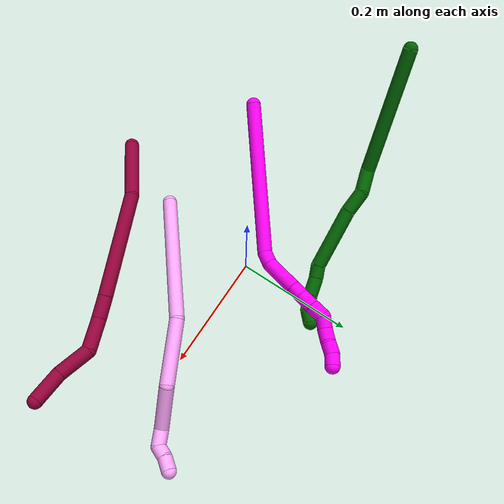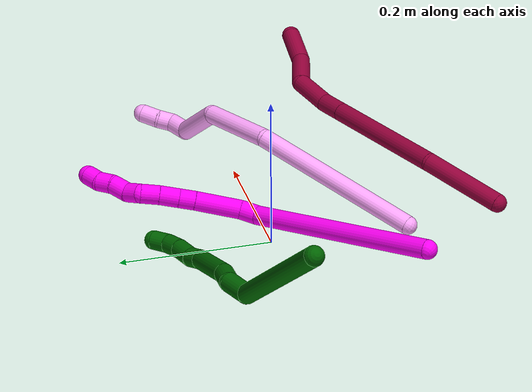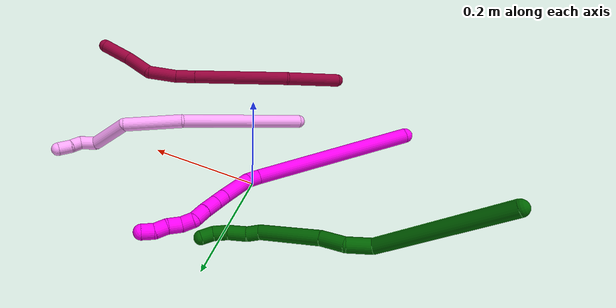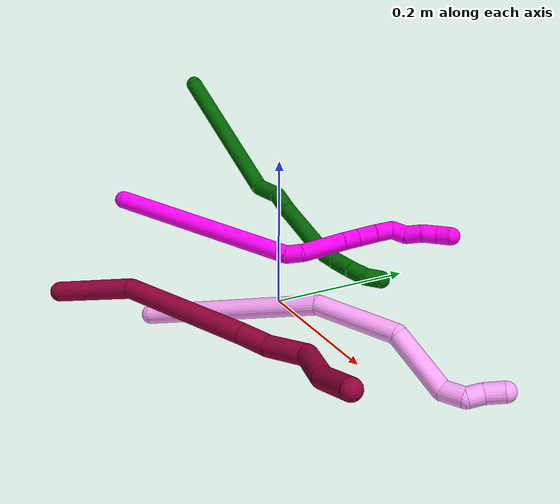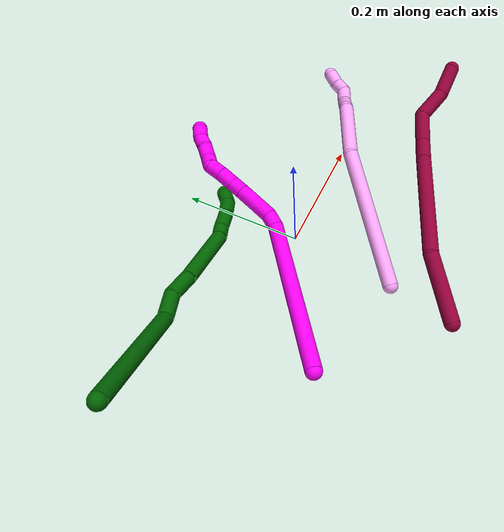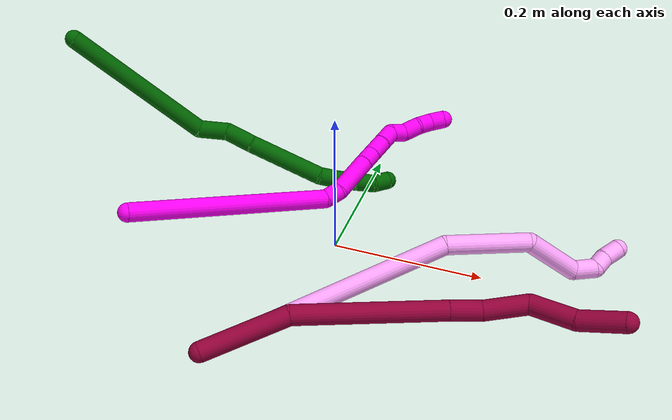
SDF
<sdf version="1.7">
 <world name="default">
  <model name="4">
   <static>0</static>
   <link name="4">
    <collision name="collision-cylinder-e_1_1_4">
     <pose>0.099212 0.010861 -0.063949 -2.97336 0.991753 -2.83236</pose>
     <geometry><cylinder><radius>0.0125</radius><length>0.237069</length></cylinder></geometry>
     <surface>
      <friction><ode><mu>1.16</mu><mu2>1.16</mu2><slip1>0</slip1><slip2>0</slip2></ode></friction>
      <contact><ode><kp>1e+06</kp><kd>1</kd><max_vel>0</max_vel><min_depth>0.001</min_depth></ode></contact>
     </surface>
    </collision>
    <visual name="visual-cylinder-e_1_1_4">
     <pose>0.099212 0.010861 -0.063949 -2.97336 0.991753 -2.83236</pose>
     <geometry><cylinder><radius>0.0125</radius><length>0.237069</length></cylinder></geometry>
     <material><ambient>1 0.65098 0.996078 1</ambient></material>
    </visual>
    <collision name="collision-cylinder-e_2_4_5">
     <pose>0.251607 0.02347 -0.138797 -2.98252 1.36615 -2.94632</pose>
     <geometry><cylinder><radius>0.0125</radius><length>0.108634</length></cylinder></geometry>
     <surface>
      <friction><ode><mu>1.16</mu><mu2>1.16</mu2><slip1>0</slip1><slip2>0</slip2></ode></friction>
      <contact><ode><kp>1e+06</kp><kd>1</kd><max_vel>0</max_vel><min_depth>0.001</min_depth></ode></contact>
     </surface>
    </collision>
    <visual name="visual-cylinder-e_2_4_5">
     <pose>0.251607 0.02347 -0.138797 -2.98252 1.36615 -2.94632</pose>
     <geometry><cylinder><radius>0.0125</radius><length>0.108634</length></cylinder></geometry>
     <material><ambient>1 0.65098 0.996078 1</ambient></material>
    </visual>
    <collision name="collision-cylinder-e_3_5_6">
     <pose>0.340381 0.010427 -0.13923 0.95499 1.09987 0.614307</pose>
     <geometry><cylinder><radius>0.0125</radius><length>0.079876</length></cylinder></geometry>
     <surface>
      <friction><ode><mu>1.16</mu><mu2>1.16</mu2><slip1>0</slip1><slip2>0</slip2></ode></friction>
      <contact><ode><kp>1e+06</kp><kd>1</kd><max_vel>0</max_vel><min_depth>0.001</min_depth></ode></contact>
     </surface>
    </collision>
    <visual name="visual-cylinder-e_3_5_6">
     <pose>0.340381 0.010427 -0.13923 0.95499 1.09987 0.614307</pose>
     <geometry><cylinder><radius>0.0125</radius><length>0.079876</length></cylinder></geometry>
     <material><ambient>1 0.65098 0.996078 1</ambient></material>
    </visual>
    <collision name="collision-cylinder-e_4_6_7">
     <pose>0.390406 -0.002761 -0.132452 -2.73156 1.29901 -2.60707</pose>
     <geometry><cylinder><radius>0.0125</radius><length>0.029971</length></cylinder></geometry>
     <surface>
      <friction><ode><mu>1.16</mu><mu2>1.16</mu2><slip1>0</slip1><slip2>0</slip2></ode></friction>
      <contact><ode><kp>1e+06</kp><kd>1</kd><max_vel>0</max_vel><min_depth>0.001</min_depth></ode></contact>
     </surface>
    </collision>
    <visual name="visual-cylinder-e_4_6_7">
     <pose>0.390406 -0.002761 -0.132452 -2.73156 1.29901 -2.60707</pose>
     <geometry><cylinder><radius>0.0125</radius><length>0.029971</length></cylinder></geometry>
     <material><ambient>1 0.65098 0.996078 1</ambient></material>
    </visual>
    <collision name="collision-cylinder-e_5_7_8">
     <pose>0.410682 -0.003565 -0.144024 2.84518 0.616446 2.26458</pose>
     <geometry><cylinder><radius>0.0125</radius><length>0.020203</length></cylinder></geometry>
     <surface>
      <friction><ode><mu>1.16</mu><mu2>1.16</mu2><slip1>0</slip1><slip2>0</slip2></ode></friction>
      <contact><ode><kp>1e+06</kp><kd>1</kd><max_vel>0</max_vel><min_depth>0.001</min_depth></ode></contact>
     </surface>
    </collision>
    <visual name="visual-cylinder-e_5_7_8">
     <pose>0.410682 -0.003565 -0.144024 2.84518 0.616446 2.26458</pose>
     <geometry><cylinder><radius>0.0125</radius><length>0.020203</length></cylinder></geometry>
     <material><ambient>1 0.65098 0.996078 1</ambient></material>
    </visual>
    <collision name="collision-cylinder-e_6_8_2">
     <pose>0.425761 -0.007337 -0.159639 2.96691 0.866453 2.76738</pose>
     <geometry><cylinder><radius>0.0125</radius><length>0.024248</length></cylinder></geometry>
     <surface>
      <friction><ode><mu>1.16</mu><mu2>1.16</mu2><slip1>0</slip1><slip2>0</slip2></ode></friction>
      <contact><ode><kp>1e+06</kp><kd>1</kd><max_vel>0</max_vel><min_depth>0.001</min_depth></ode></contact>
     </surface>
    </collision>
    <visual name="visual-cylinder-e_6_8_2">
     <pose>0.425761 -0.007337 -0.159639 2.96691 0.866453 2.76738</pose>
     <geometry><cylinder><radius>0.0125</radius><length>0.024248</length></cylinder></geometry>
     <material><ambient>1 0.65098 0.996078 1</ambient></material>
    </visual>
    <collision name="collision-sphere-2">
     <pose>0.435 -0.008701 -0.16737 0 -0 0</pose>
     <geometry><sphere><radius>0.0125</radius></sphere></geometry>
     <surface>
      <friction><ode><mu>1.16</mu><mu2>1.16</mu2><slip1>0</slip1><slip2>0</slip2></ode></friction>
      <contact><ode><kp>1e+06</kp><kd>1</kd><max_vel>0</max_vel><min_depth>0.001</min_depth></ode></contact>
     </surface>
    </collision>
    <visual name="visual-sphere-2">
     <pose>0.435 -0.008701 -0.16737 0 -0 0</pose>
     <geometry><sphere><radius>0.0125</radius></sphere></geometry>
     <material><ambient>1 0.65098 0.996078 1</ambient></material>
    </visual>
    <collision name="collision-sphere-4">
     <pose>0.198423 0.021722 -0.127898 0 -0 0</pose>
     <geometry><sphere><radius>0.0125</radius></sphere></geometry>
     <surface>
      <friction><ode><mu>1.16</mu><mu2>1.16</mu2><slip1>0</slip1><slip2>0</slip2></ode></friction>
      <contact><ode><kp>1e+06</kp><kd>1</kd><max_vel>0</max_vel><min_depth>0.001</min_depth></ode></contact>
     </surface>
    </collision>
    <visual name="visual-sphere-4">
     <pose>0.198423 0.021722 -0.127898 0 -0 0</pose>
     <geometry><sphere><radius>0.0125</radius></sphere></geometry>
     <material><ambient>1 0.65098 0.996078 1</ambient></material>
    </visual>
    <collision name="collision-sphere-1">
     <geometry><sphere><radius>0.0125</radius></sphere></geometry>
     <surface>
      <friction><ode><mu>1.16</mu><mu2>1.16</mu2><slip1>0</slip1><slip2>0</slip2></ode></friction>
      <contact><ode><kp>1e+06</kp><kd>1</kd><max_vel>0</max_vel><min_depth>0.001</min_depth></ode></contact>
     </surface>
    </collision>
    <visual name="visual-sphere-1">
     <geometry><sphere><radius>0.0125</radius></sphere></geometry>
     <material><ambient>1 0.65098 0.996078 1</ambient></material>
    </visual>
    <collision name="collision-sphere-8">
     <pose>0.416522 -0.005973 -0.151907 0 -0 0</pose>
     <geometry><sphere><radius>0.0125</radius></sphere></geometry>
     <surface>
      <friction><ode><mu>1.16</mu><mu2>1.16</mu2><slip1>0</slip1><slip2>0</slip2></ode></friction>
      <contact><ode><kp>1e+06</kp><kd>1</kd><max_vel>0</max_vel><min_depth>0.001</min_depth></ode></contact>
     </surface>
    </collision>
    <visual name="visual-sphere-8">
     <pose>0.416522 -0.005973 -0.151907 0 -0 0</pose>
     <geometry><sphere><radius>0.0125</radius></sphere></geometry>
     <material><ambient>1 0.65098 0.996078 1</ambient></material>
    </visual>
    <collision name="collision-sphere-5">
     <pose>0.30479 0.025219 -0.149696 0 -0 0</pose>
     <geometry><sphere><radius>0.0125</radius></sphere></geometry>
     <surface>
      <friction><ode><mu>1.16</mu><mu2>1.16</mu2><slip1>0</slip1><slip2>0</slip2></ode></friction>
      <contact><ode><kp>1e+06</kp><kd>1</kd><max_vel>0</max_vel><min_depth>0.001</min_depth></ode></contact>
     </surface>
    </collision>
    <visual name="visual-sphere-5">
     <pose>0.30479 0.025219 -0.149696 0 -0 0</pose>
     <geometry><sphere><radius>0.0125</radius></sphere></geometry>
     <material><ambient>1 0.65098 0.996078 1</ambient></material>
    </visual>
    <collision name="collision-sphere-6">
     <pose>0.375971 -0.004365 -0.128763 0 -0 0</pose>
     <geometry><sphere><radius>0.0125</radius></sphere></geometry>
     <surface>
      <friction><ode><mu>1.16</mu><mu2>1.16</mu2><slip1>0</slip1><slip2>0</slip2></ode></friction>
      <contact><ode><kp>1e+06</kp><kd>1</kd><max_vel>0</max_vel><min_depth>0.001</min_depth></ode></contact>
     </surface>
    </collision>
    <visual name="visual-sphere-6">
     <pose>0.375971 -0.004365 -0.128763 0 -0 0</pose>
     <geometry><sphere><radius>0.0125</radius></sphere></geometry>
     <material><ambient>1 0.65098 0.996078 1</ambient></material>
    </visual>
    <collision name="collision-sphere-7">
     <pose>0.404842 -0.001157 -0.136142 0 -0 0</pose>
     <geometry><sphere><radius>0.0125</radius></sphere></geometry>
     <surface>
      <friction><ode><mu>1.16</mu><mu2>1.16</mu2><slip1>0</slip1><slip2>0</slip2></ode></friction>
      <contact><ode><kp>1e+06</kp><kd>1</kd><max_vel>0</max_vel><min_depth>0.001</min_depth></ode></contact>
     </surface>
    </collision>
    <visual name="visual-sphere-7">
     <pose>0.404842 -0.001157 -0.136142 0 -0 0</pose>
     <geometry><sphere><radius>0.0125</radius></sphere></geometry>
     <material><ambient>1 0.65098 0.996078 1</ambient></material>
    </visual>
    <inertial>
     <pose>0.216726 0.011249 -0.10422 0 -0 0</pose>
     <mass>0.5</mass>
     <inertia>
      <ixx>-0.000736</ixx>
      <ixy>0</ixy>
      <ixz>0</ixz>
      <iyy>0.001079</iyy>
      <iyz>0</iyz>
      <izz>-0.001194</izz>
     </inertia>
    </inertial>
   </link>
   <pose>-0.02158 -0.17731 0.011485 2.31597 0.218943 0.334014</pose>
  </model>
  <model name="6">
   <static>0</static>
   <link name="6">
    <collision name="collision-cylinder-e_1_1_4">
     <pose>0.001057 0.002945 -0.106125 -3.11385 0.009959 -0.689299</pose>
     <geometry><cylinder><radius>0.0125</radius><length>0.212342</length></cylinder></geometry>
     <surface>
      <friction><ode><mu>1.16</mu><mu2>1.16</mu2><slip1>0</slip1><slip2>0</slip2></ode></friction>
      <contact><ode><kp>1e+06</kp><kd>1</kd><max_vel>0</max_vel><min_depth>0.001</min_depth></ode></contact>
     </surface>
    </collision>
    <visual name="visual-cylinder-e_1_1_4">
     <pose>0.001057 0.002945 -0.106125 -3.11385 0.009959 -0.689299</pose>
     <geometry><cylinder><radius>0.0125</radius><length>0.212342</length></cylinder></geometry>
     <material><ambient>0 0.392157 0.003922 1</ambient></material>
    </visual>
    <collision name="collision-cylinder-e_2_4_5">
     <pose>0.013771 0.007624 -0.228801 -3.03714 0.611043 -2.81309</pose>
     <geometry><cylinder><radius>0.0125</radius><length>0.040636</length></cylinder></geometry>
     <surface>
      <friction><ode><mu>1.16</mu><mu2>1.16</mu2><slip1>0</slip1><slip2>0</slip2></ode></friction>
      <contact><ode><kp>1e+06</kp><kd>1</kd><max_vel>0</max_vel><min_depth>0.001</min_depth></ode></contact>
     </surface>
    </collision>
    <visual name="visual-cylinder-e_2_4_5">
     <pose>0.013771 0.007624 -0.228801 -3.03714 0.611043 -2.81309</pose>
     <geometry><cylinder><radius>0.0125</radius><length>0.040636</length></cylinder></geometry>
     <material><ambient>0 0.392157 0.003922 1</ambient></material>
    </visual>
    <collision name="collision-cylinder-e_3_5_6">
     <pose>0.033163 0.003659 -0.263024 2.82954 0.394677 1.80835</pose>
     <geometry><cylinder><radius>0.0125</radius><length>0.040231</length></cylinder></geometry>
     <surface>
      <friction><ode><mu>1.16</mu><mu2>1.16</mu2><slip1>0</slip1><slip2>0</slip2></ode></friction>
      <contact><ode><kp>1e+06</kp><kd>1</kd><max_vel>0</max_vel><min_depth>0.001</min_depth></ode></contact>
     </surface>
    </collision>
    <visual name="visual-cylinder-e_3_5_6">
     <pose>0.033163 0.003659 -0.263024 2.82954 0.394677 1.80835</pose>
     <geometry><cylinder><radius>0.0125</radius><length>0.040231</length></cylinder></geometry>
     <material><ambient>0 0.392157 0.003922 1</ambient></material>
    </visual>
    <collision name="collision-cylinder-e_4_6_7">
     <pose>0.058899 -0.009485 -0.329844 2.99131 0.347459 2.33114</pose>
     <geometry><cylinder><radius>0.0125</radius><length>0.105734</length></cylinder></geometry>
     <surface>
      <friction><ode><mu>1.16</mu><mu2>1.16</mu2><slip1>0</slip1><slip2>0</slip2></ode></friction>
      <contact><ode><kp>1e+06</kp><kd>1</kd><max_vel>0</max_vel><min_depth>0.001</min_depth></ode></contact>
     </surface>
    </collision>
    <visual name="visual-cylinder-e_4_6_7">
     <pose>0.058899 -0.009485 -0.329844 2.99131 0.347459 2.33114</pose>
     <geometry><cylinder><radius>0.0125</radius><length>0.105734</length></cylinder></geometry>
     <material><ambient>0 0.392157 0.003922 1</ambient></material>
    </visual>
    <collision name="collision-cylinder-e_5_7_8">
     <pose>0.081278 -0.014942 -0.388969 -2.9452 0.406306 -2.24944</pose>
     <geometry><cylinder><radius>0.0125</radius><length>0.022149</length></cylinder></geometry>
     <surface>
      <friction><ode><mu>1.16</mu><mu2>1.16</mu2><slip1>0</slip1><slip2>0</slip2></ode></friction>
      <contact><ode><kp>1e+06</kp><kd>1</kd><max_vel>0</max_vel><min_depth>0.001</min_depth></ode></contact>
     </surface>
    </collision>
    <visual name="visual-cylinder-e_5_7_8">
     <pose>0.081278 -0.014942 -0.388969 -2.9452 0.406306 -2.24944</pose>
     <geometry><cylinder><radius>0.0125</radius><length>0.022149</length></cylinder></geometry>
     <material><ambient>0 0.392157 0.003922 1</ambient></material>
    </visual>
    <collision name="collision-cylinder-e_6_8_9">
     <pose>0.094532 -0.012486 -0.412093 -3.10577 0.593626 -3.02458</pose>
     <geometry><cylinder><radius>0.0125</radius><length>0.03174</length></cylinder></geometry>
     <surface>
      <friction><ode><mu>1.16</mu><mu2>1.16</mu2><slip1>0</slip1><slip2>0</slip2></ode></friction>
      <contact><ode><kp>1e+06</kp><kd>1</kd><max_vel>0</max_vel><min_depth>0.001</min_depth></ode></contact>
     </surface>
    </collision>
    <visual name="visual-cylinder-e_6_8_9">
     <pose>0.094532 -0.012486 -0.412093 -3.10577 0.593626 -3.02458</pose>
     <geometry><cylinder><radius>0.0125</radius><length>0.03174</length></cylinder></geometry>
     <material><ambient>0 0.392157 0.003922 1</ambient></material>
    </visual>
    <collision name="collision-cylinder-e_7_9_10">
     <pose>0.109985 -0.009787 -0.435868 -2.93501 0.544474 -2.43051</pose>
     <geometry><cylinder><radius>0.0125</radius><length>0.025392</length></cylinder></geometry>
     <surface>
      <friction><ode><mu>1.16</mu><mu2>1.16</mu2><slip1>0</slip1><slip2>0</slip2></ode></friction>
      <contact><ode><kp>1e+06</kp><kd>1</kd><max_vel>0</max_vel><min_depth>0.001</min_depth></ode></contact>
     </surface>
    </collision>
    <visual name="visual-cylinder-e_7_9_10">
     <pose>0.109985 -0.009787 -0.435868 -2.93501 0.544474 -2.43051</pose>
     <geometry><cylinder><radius>0.0125</radius><length>0.025392</length></cylinder></geometry>
     <material><ambient>0 0.392157 0.003922 1</ambient></material>
    </visual>
    <collision name="collision-cylinder-e_8_10_2">
     <pose>0.122217 -0.001817 -0.453817 -2.47636 0.546226 -1.36267</pose>
     <geometry><cylinder><radius>0.0125</radius><length>0.021775</length></cylinder></geometry>
     <surface>
      <friction><ode><mu>1.16</mu><mu2>1.16</mu2><slip1>0</slip1><slip2>0</slip2></ode></friction>
      <contact><ode><kp>1e+06</kp><kd>1</kd><max_vel>0</max_vel><min_depth>0.001</min_depth></ode></contact>
     </surface>
    </collision>
    <visual name="visual-cylinder-e_8_10_2">
     <pose>0.122217 -0.001817 -0.453817 -2.47636 0.546226 -1.36267</pose>
     <geometry><cylinder><radius>0.0125</radius><length>0.021775</length></cylinder></geometry>
     <material><ambient>0 0.392157 0.003922 1</ambient></material>
    </visual>
    <collision name="collision-sphere-2">
     <pose>0.127873 0.003926 -0.461137 0 -0 0</pose>
     <geometry><sphere><radius>0.0125</radius></sphere></geometry>
     <surface>
      <friction><ode><mu>1.16</mu><mu2>1.16</mu2><slip1>0</slip1><slip2>0</slip2></ode></friction>
      <contact><ode><kp>1e+06</kp><kd>1</kd><max_vel>0</max_vel><min_depth>0.001</min_depth></ode></contact>
     </surface>
    </collision>
    <visual name="visual-sphere-2">
     <pose>0.127873 0.003926 -0.461137 0 -0 0</pose>
     <geometry><sphere><radius>0.0125</radius></sphere></geometry>
     <material><ambient>0 0.392157 0.003922 1</ambient></material>
    </visual>
    <collision name="collision-sphere-10">
     <pose>0.116561 -0.007559 -0.446498 0 -0 0</pose>
     <geometry><sphere><radius>0.0125</radius></sphere></geometry>
     <surface>
      <friction><ode><mu>1.16</mu><mu2>1.16</mu2><slip1>0</slip1><slip2>0</slip2></ode></friction>
      <contact><ode><kp>1e+06</kp><kd>1</kd><max_vel>0</max_vel><min_depth>0.001</min_depth></ode></contact>
     </surface>
    </collision>
    <visual name="visual-sphere-10">
     <pose>0.116561 -0.007559 -0.446498 0 -0 0</pose>
     <geometry><sphere><radius>0.0125</radius></sphere></geometry>
     <material><ambient>0 0.392157 0.003922 1</ambient></material>
    </visual>
    <collision name="collision-sphere-9">
     <pose>0.103409 -0.012014 -0.425239 0 -0 0</pose>
     <geometry><sphere><radius>0.0125</radius></sphere></geometry>
     <surface>
      <friction><ode><mu>1.16</mu><mu2>1.16</mu2><slip1>0</slip1><slip2>0</slip2></ode></friction>
      <contact><ode><kp>1e+06</kp><kd>1</kd><max_vel>0</max_vel><min_depth>0.001</min_depth></ode></contact>
     </surface>
    </collision>
    <visual name="visual-sphere-9">
     <pose>0.103409 -0.012014 -0.425239 0 -0 0</pose>
     <geometry><sphere><radius>0.0125</radius></sphere></geometry>
     <material><ambient>0 0.392157 0.003922 1</ambient></material>
    </visual>
    <collision name="collision-sphere-4">
     <pose>0.002115 0.005889 -0.21225 0 -0 0</pose>
     <geometry><sphere><radius>0.0125</radius></sphere></geometry>
     <surface>
      <friction><ode><mu>1.16</mu><mu2>1.16</mu2><slip1>0</slip1><slip2>0</slip2></ode></friction>
      <contact><ode><kp>1e+06</kp><kd>1</kd><max_vel>0</max_vel><min_depth>0.001</min_depth></ode></contact>
     </surface>
    </collision>
    <visual name="visual-sphere-4">
     <pose>0.002115 0.005889 -0.21225 0 -0 0</pose>
     <geometry><sphere><radius>0.0125</radius></sphere></geometry>
     <material><ambient>0 0.392157 0.003922 1</ambient></material>
    </visual>
    <collision name="collision-sphere-1">
     <geometry><sphere><radius>0.0125</radius></sphere></geometry>
     <surface>
      <friction><ode><mu>1.16</mu><mu2>1.16</mu2><slip1>0</slip1><slip2>0</slip2></ode></friction>
      <contact><ode><kp>1e+06</kp><kd>1</kd><max_vel>0</max_vel><min_depth>0.001</min_depth></ode></contact>
     </surface>
    </collision>
    <visual name="visual-sphere-1">
     <geometry><sphere><radius>0.0125</radius></sphere></geometry>
     <material><ambient>0 0.392157 0.003922 1</ambient></material>
    </visual>
    <collision name="collision-sphere-8">
     <pose>0.085655 -0.012957 -0.398946 0 -0 0</pose>
     <geometry><sphere><radius>0.0125</radius></sphere></geometry>
     <surface>
      <friction><ode><mu>1.16</mu><mu2>1.16</mu2><slip1>0</slip1><slip2>0</slip2></ode></friction>
      <contact><ode><kp>1e+06</kp><kd>1</kd><max_vel>0</max_vel><min_depth>0.001</min_depth></ode></contact>
     </surface>
    </collision>
    <visual name="visual-sphere-8">
     <pose>0.085655 -0.012957 -0.398946 0 -0 0</pose>
     <geometry><sphere><radius>0.0125</radius></sphere></geometry>
     <material><ambient>0 0.392157 0.003922 1</ambient></material>
    </visual>
    <collision name="collision-sphere-5">
     <pose>0.025428 0.00936 -0.245352 0 -0 0</pose>
     <geometry><sphere><radius>0.0125</radius></sphere></geometry>
     <surface>
      <friction><ode><mu>1.16</mu><mu2>1.16</mu2><slip1>0</slip1><slip2>0</slip2></ode></friction>
      <contact><ode><kp>1e+06</kp><kd>1</kd><max_vel>0</max_vel><min_depth>0.001</min_depth></ode></contact>
     </surface>
    </collision>
    <visual name="visual-sphere-5">
     <pose>0.025428 0.00936 -0.245352 0 -0 0</pose>
     <geometry><sphere><radius>0.0125</radius></sphere></geometry>
     <material><ambient>0 0.392157 0.003922 1</ambient></material>
    </visual>
    <collision name="collision-sphere-6">
     <pose>0.040898 -0.002042 -0.280696 0 -0 0</pose>
     <geometry><sphere><radius>0.0125</radius></sphere></geometry>
     <surface>
      <friction><ode><mu>1.16</mu><mu2>1.16</mu2><slip1>0</slip1><slip2>0</slip2></ode></friction>
      <contact><ode><kp>1e+06</kp><kd>1</kd><max_vel>0</max_vel><min_depth>0.001</min_depth></ode></contact>
     </surface>
    </collision>
    <visual name="visual-sphere-6">
     <pose>0.040898 -0.002042 -0.280696 0 -0 0</pose>
     <geometry><sphere><radius>0.0125</radius></sphere></geometry>
     <material><ambient>0 0.392157 0.003922 1</ambient></material>
    </visual>
    <collision name="collision-sphere-7">
     <pose>0.076901 -0.016927 -0.378991 0 -0 0</pose>
     <geometry><sphere><radius>0.0125</radius></sphere></geometry>
     <surface>
      <friction><ode><mu>1.16</mu><mu2>1.16</mu2><slip1>0</slip1><slip2>0</slip2></ode></friction>
      <contact><ode><kp>1e+06</kp><kd>1</kd><max_vel>0</max_vel><min_depth>0.001</min_depth></ode></contact>
     </surface>
    </collision>
    <visual name="visual-sphere-7">
     <pose>0.076901 -0.016927 -0.378991 0 -0 0</pose>
     <geometry><sphere><radius>0.0125</radius></sphere></geometry>
     <material><ambient>0 0.392157 0.003922 1</ambient></material>
    </visual>
    <inertial>
     <pose>0.037201 -0.001872 -0.239869 0 -0 0</pose>
     <mass>0.5</mass>
     <inertia>
      <ixx>0.00011</ixx>
      <ixy>0</ixy>
      <ixz>0</ixz>
      <iyy>-0.000974</iyy>
      <iyz>0</iyz>
      <izz>-9.9e-05</izz>
     </inertia>
    </inertial>
   </link>
   <pose>-0.397302 0.054257 0.213016 -0.042227 -0.865261 0.255167</pose>
  </model>
  <model name="8">
   <static>0</static>
   <link name="8">
    <collision name="collision-cylinder-e_1_1_4">
     <pose>0.031627 0.012996 -0.042906 -2.84748 0.614391 -2.26793</pose>
     <geometry><cylinder><radius>0.0125</radius><length>0.109728</length></cylinder></geometry>
     <surface>
      <friction><ode><mu>1.16</mu><mu2>1.16</mu2><slip1>0</slip1><slip2>0</slip2></ode></friction>
      <contact><ode><kp>1e+06</kp><kd>1</kd><max_vel>0</max_vel><min_depth>0.001</min_depth></ode></contact>
     </surface>
    </collision>
    <visual name="visual-cylinder-e_1_1_4">
     <pose>0.031627 0.012996 -0.042906 -2.84748 0.614391 -2.26793</pose>
     <geometry><cylinder><radius>0.0125</radius><length>0.109728</length></cylinder></geometry>
     <material><ambient>0.584314 0 0.227451 1</ambient></material>
    </visual>
    <collision name="collision-cylinder-e_2_4_5">
     <pose>0.123803 0.016149 -0.153681 2.99757 0.723288 2.76472</pose>
     <geometry><cylinder><radius>0.0125</radius><length>0.182967</length></cylinder></geometry>
     <surface>
      <friction><ode><mu>1.16</mu><mu2>1.16</mu2><slip1>0</slip1><slip2>0</slip2></ode></friction>
      <contact><ode><kp>1e+06</kp><kd>1</kd><max_vel>0</max_vel><min_depth>0.001</min_depth></ode></contact>
     </surface>
    </collision>
    <visual name="visual-cylinder-e_2_4_5">
     <pose>0.123803 0.016149 -0.153681 2.99757 0.723288 2.76472</pose>
     <geometry><cylinder><radius>0.0125</radius><length>0.182967</length></cylinder></geometry>
     <material><ambient>0.584314 0 0.227451 1</ambient></material>
    </visual>
    <collision name="collision-cylinder-e_3_5_6">
     <pose>0.197161 0.003608 -0.235587 2.9517 0.730676 2.65358</pose>
     <geometry><cylinder><radius>0.0125</radius><length>0.038387</length></cylinder></geometry>
     <surface>
      <friction><ode><mu>1.16</mu><mu2>1.16</mu2><slip1>0</slip1><slip2>0</slip2></ode></friction>
      <contact><ode><kp>1e+06</kp><kd>1</kd><max_vel>0</max_vel><min_depth>0.001</min_depth></ode></contact>
     </surface>
    </collision>
    <visual name="visual-cylinder-e_3_5_6">
     <pose>0.197161 0.003608 -0.235587 2.9517 0.730676 2.65358</pose>
     <geometry><cylinder><radius>0.0125</radius><length>0.038387</length></cylinder></geometry>
     <material><ambient>0.584314 0 0.227451 1</ambient></material>
    </visual>
    <collision name="collision-cylinder-e_4_6_7">
     <pose>0.230223 0.001456 -0.268186 -3.11218 0.828704 -3.07473</pose>
     <geometry><cylinder><radius>0.0125</radius><length>0.054956</length></cylinder></geometry>
     <surface>
      <friction><ode><mu>1.16</mu><mu2>1.16</mu2><slip1>0</slip1><slip2>0</slip2></ode></friction>
      <contact><ode><kp>1e+06</kp><kd>1</kd><max_vel>0</max_vel><min_depth>0.001</min_depth></ode></contact>
     </surface>
    </collision>
    <visual name="visual-cylinder-e_4_6_7">
     <pose>0.230223 0.001456 -0.268186 -3.11218 0.828704 -3.07473</pose>
     <geometry><cylinder><radius>0.0125</radius><length>0.054956</length></cylinder></geometry>
     <material><ambient>0.584314 0 0.227451 1</ambient></material>
    </visual>
    <collision name="collision-cylinder-e_5_7_8">
     <pose>0.277342 -0.007339 -0.292447 2.11862 1.18405 1.75053</pose>
     <geometry><cylinder><radius>0.0125</radius><length>0.05802</length></cylinder></geometry>
     <surface>
      <friction><ode><mu>1.16</mu><mu2>1.16</mu2><slip1>0</slip1><slip2>0</slip2></ode></friction>
      <contact><ode><kp>1e+06</kp><kd>1</kd><max_vel>0</max_vel><min_depth>0.001</min_depth></ode></contact>
     </surface>
    </collision>
    <visual name="visual-cylinder-e_5_7_8">
     <pose>0.277342 -0.007339 -0.292447 2.11862 1.18405 1.75053</pose>
     <geometry><cylinder><radius>0.0125</radius><length>0.05802</length></cylinder></geometry>
     <material><ambient>0.584314 0 0.227451 1</ambient></material>
    </visual>
    <collision name="collision-cylinder-e_6_8_2">
     <pose>0.330291 -0.018707 -0.308049 2.93958 1.20105 2.84776</pose>
     <geometry><cylinder><radius>0.0125</radius><length>0.055942</length></cylinder></geometry>
     <surface>
      <friction><ode><mu>1.16</mu><mu2>1.16</mu2><slip1>0</slip1><slip2>0</slip2></ode></friction>
      <contact><ode><kp>1e+06</kp><kd>1</kd><max_vel>0</max_vel><min_depth>0.001</min_depth></ode></contact>
     </surface>
    </collision>
    <visual name="visual-cylinder-e_6_8_2">
     <pose>0.330291 -0.018707 -0.308049 2.93958 1.20105 2.84776</pose>
     <geometry><cylinder><radius>0.0125</radius><length>0.055942</length></cylinder></geometry>
     <material><ambient>0.584314 0 0.227451 1</ambient></material>
    </visual>
    <collision name="collision-sphere-2">
     <pose>0.356371 -0.020735 -0.317951 0 -0 0</pose>
     <geometry><sphere><radius>0.0125</radius></sphere></geometry>
     <surface>
      <friction><ode><mu>1.16</mu><mu2>1.16</mu2><slip1>0</slip1><slip2>0</slip2></ode></friction>
      <contact><ode><kp>1e+06</kp><kd>1</kd><max_vel>0</max_vel><min_depth>0.001</min_depth></ode></contact>
     </surface>
    </collision>
    <visual name="visual-sphere-2">
     <pose>0.356371 -0.020735 -0.317951 0 -0 0</pose>
     <geometry><sphere><radius>0.0125</radius></sphere></geometry>
     <material><ambient>0.584314 0 0.227451 1</ambient></material>
    </visual>
    <collision name="collision-sphere-4">
     <pose>0.063254 0.025992 -0.085812 0 -0 0</pose>
     <geometry><sphere><radius>0.0125</radius></sphere></geometry>
     <surface>
      <friction><ode><mu>1.16</mu><mu2>1.16</mu2><slip1>0</slip1><slip2>0</slip2></ode></friction>
      <contact><ode><kp>1e+06</kp><kd>1</kd><max_vel>0</max_vel><min_depth>0.001</min_depth></ode></contact>
     </surface>
    </collision>
    <visual name="visual-sphere-4">
     <pose>0.063254 0.025992 -0.085812 0 -0 0</pose>
     <geometry><sphere><radius>0.0125</radius></sphere></geometry>
     <material><ambient>0.584314 0 0.227451 1</ambient></material>
    </visual>
    <collision name="collision-sphere-1">
     <geometry><sphere><radius>0.0125</radius></sphere></geometry>
     <surface>
      <friction><ode><mu>1.16</mu><mu2>1.16</mu2><slip1>0</slip1><slip2>0</slip2></ode></friction>
      <contact><ode><kp>1e+06</kp><kd>1</kd><max_vel>0</max_vel><min_depth>0.001</min_depth></ode></contact>
     </surface>
    </collision>
    <visual name="visual-sphere-1">
     <geometry><sphere><radius>0.0125</radius></sphere></geometry>
     <material><ambient>0.584314 0 0.227451 1</ambient></material>
    </visual>
    <collision name="collision-sphere-8">
     <pose>0.30421 -0.016679 -0.298146 0 -0 0</pose>
     <geometry><sphere><radius>0.0125</radius></sphere></geometry>
     <surface>
      <friction><ode><mu>1.16</mu><mu2>1.16</mu2><slip1>0</slip1><slip2>0</slip2></ode></friction>
      <contact><ode><kp>1e+06</kp><kd>1</kd><max_vel>0</max_vel><min_depth>0.001</min_depth></ode></contact>
     </surface>
    </collision>
    <visual name="visual-sphere-8">
     <pose>0.30421 -0.016679 -0.298146 0 -0 0</pose>
     <geometry><sphere><radius>0.0125</radius></sphere></geometry>
     <material><ambient>0.584314 0 0.227451 1</ambient></material>
    </visual>
    <collision name="collision-sphere-5">
     <pose>0.184351 0.006306 -0.22155 0 -0 0</pose>
     <geometry><sphere><radius>0.0125</radius></sphere></geometry>
     <surface>
      <friction><ode><mu>1.16</mu><mu2>1.16</mu2><slip1>0</slip1><slip2>0</slip2></ode></friction>
      <contact><ode><kp>1e+06</kp><kd>1</kd><max_vel>0</max_vel><min_depth>0.001</min_depth></ode></contact>
     </surface>
    </collision>
    <visual name="visual-sphere-5">
     <pose>0.184351 0.006306 -0.22155 0 -0 0</pose>
     <geometry><sphere><radius>0.0125</radius></sphere></geometry>
     <material><ambient>0.584314 0 0.227451 1</ambient></material>
    </visual>
    <collision name="collision-sphere-6">
     <pose>0.20997 0.00091 -0.249623 0 -0 0</pose>
     <geometry><sphere><radius>0.0125</radius></sphere></geometry>
     <surface>
      <friction><ode><mu>1.16</mu><mu2>1.16</mu2><slip1>0</slip1><slip2>0</slip2></ode></friction>
      <contact><ode><kp>1e+06</kp><kd>1</kd><max_vel>0</max_vel><min_depth>0.001</min_depth></ode></contact>
     </surface>
    </collision>
    <visual name="visual-sphere-6">
     <pose>0.20997 0.00091 -0.249623 0 -0 0</pose>
     <geometry><sphere><radius>0.0125</radius></sphere></geometry>
     <material><ambient>0.584314 0 0.227451 1</ambient></material>
    </visual>
    <collision name="collision-sphere-7">
     <pose>0.250475 0.002002 -0.286748 0 -0 0</pose>
     <geometry><sphere><radius>0.0125</radius></sphere></geometry>
     <surface>
      <friction><ode><mu>1.16</mu><mu2>1.16</mu2><slip1>0</slip1><slip2>0</slip2></ode></friction>
      <contact><ode><kp>1e+06</kp><kd>1</kd><max_vel>0</max_vel><min_depth>0.001</min_depth></ode></contact>
     </surface>
    </collision>
    <visual name="visual-sphere-7">
     <pose>0.250475 0.002002 -0.286748 0 -0 0</pose>
     <geometry><sphere><radius>0.0125</radius></sphere></geometry>
     <material><ambient>0.584314 0 0.227451 1</ambient></material>
    </visual>
    <inertial>
     <pose>0.161822 0.006254 -0.181618 0 -0 0</pose>
     <mass>0.5</mass>
     <inertia>
      <ixx>-0.000334</ixx>
      <ixy>0</ixy>
      <ixz>0</ixz>
      <iyy>0.000713</iyy>
      <iyz>0</iyz>
      <izz>-0.000446</izz>
     </inertia>
    </inertial>
   </link>
   <pose>-0.061661 -0.28437 0.050371 1.22679 -0.476217 -0.334268</pose>
  </model>
  <model name="10">
   <static>0</static>
   <link name="10">
    <collision name="collision-cylinder-e_1_1_4">
     <pose>0.078145 0.102196 0.028412 -1.29963 0.634947 -0.48939</pose>
     <geometry><cylinder><radius>0.0125</radius><length>0.263498</length></cylinder></geometry>
     <surface>
      <friction><ode><mu>1.16</mu><mu2>1.16</mu2><slip1>0</slip1><slip2>0</slip2></ode></friction>
      <contact><ode><kp>1e+06</kp><kd>1</kd><max_vel>0</max_vel><min_depth>0.001</min_depth></ode></contact>
     </surface>
    </collision>
    <visual name="visual-cylinder-e_1_1_4">
     <pose>0.078145 0.102196 0.028412 -1.29963 0.634947 -0.48939</pose>
     <geometry><cylinder><radius>0.0125</radius><length>0.263498</length></cylinder></geometry>
     <material><ambient>1 0 0.964706 1</ambient></material>
    </visual>
    <collision name="collision-cylinder-e_2_4_5">
     <pose>0.159369 0.215447 0.056816 -1.57141 0.271616 -0.27178</pose>
     <geometry><cylinder><radius>0.0125</radius><length>0.022952</length></cylinder></geometry>
     <surface>
      <friction><ode><mu>1.16</mu><mu2>1.16</mu2><slip1>0</slip1><slip2>0</slip2></ode></friction>
      <contact><ode><kp>1e+06</kp><kd>1</kd><max_vel>0</max_vel><min_depth>0.001</min_depth></ode></contact>
     </surface>
    </collision>
    <visual name="visual-cylinder-e_2_4_5">
     <pose>0.159369 0.215447 0.056816 -1.57141 0.271616 -0.27178</pose>
     <geometry><cylinder><radius>0.0125</radius><length>0.022952</length></cylinder></geometry>
     <material><ambient>1 0 0.964706 1</ambient></material>
    </visual>
    <collision name="collision-cylinder-e_3_5_6">
     <pose>0.166414 0.25458 0.047829 -1.88034 0.133749 -0.182961</pose>
     <geometry><cylinder><radius>0.0125</radius><length>0.05949</length></cylinder></geometry>
     <surface>
      <friction><ode><mu>1.16</mu><mu2>1.16</mu2><slip1>0</slip1><slip2>0</slip2></ode></friction>
      <contact><ode><kp>1e+06</kp><kd>1</kd><max_vel>0</max_vel><min_depth>0.001</min_depth></ode></contact>
     </surface>
    </collision>
    <visual name="visual-cylinder-e_3_5_6">
     <pose>0.166414 0.25458 0.047829 -1.88034 0.133749 -0.182961</pose>
     <geometry><cylinder><radius>0.0125</radius><length>0.05949</length></cylinder></geometry>
     <material><ambient>1 0 0.964706 1</ambient></material>
    </visual>
    <collision name="collision-cylinder-e_4_6_7">
     <pose>0.172071 0.292199 0.035574 -1.90153 0.166024 -0.232029</pose>
     <geometry><cylinder><radius>0.0125</radius><length>0.020455</length></cylinder></geometry>
     <surface>
      <friction><ode><mu>1.16</mu><mu2>1.16</mu2><slip1>0</slip1><slip2>0</slip2></ode></friction>
      <contact><ode><kp>1e+06</kp><kd>1</kd><max_vel>0</max_vel><min_depth>0.001</min_depth></ode></contact>
     </surface>
    </collision>
    <visual name="visual-cylinder-e_4_6_7">
     <pose>0.172071 0.292199 0.035574 -1.90153 0.166024 -0.232029</pose>
     <geometry><cylinder><radius>0.0125</radius><length>0.020455</length></cylinder></geometry>
     <material><ambient>1 0 0.964706 1</ambient></material>
    </visual>
    <collision name="collision-cylinder-e_5_7_8">
     <pose>0.175844 0.31356 0.028246 -1.90107 0.165127 -0.23067</pose>
     <geometry><cylinder><radius>0.0125</radius><length>0.025337</length></cylinder></geometry>
     <surface>
      <friction><ode><mu>1.16</mu><mu2>1.16</mu2><slip1>0</slip1><slip2>0</slip2></ode></friction>
      <contact><ode><kp>1e+06</kp><kd>1</kd><max_vel>0</max_vel><min_depth>0.001</min_depth></ode></contact>
     </surface>
    </collision>
    <visual name="visual-cylinder-e_5_7_8">
     <pose>0.175844 0.31356 0.028246 -1.90107 0.165127 -0.23067</pose>
     <geometry><cylinder><radius>0.0125</radius><length>0.025337</length></cylinder></geometry>
     <material><ambient>1 0 0.964706 1</ambient></material>
    </visual>
    <collision name="collision-cylinder-e_6_8_9">
     <pose>0.180457 0.336337 0.019655 -1.96351 0.210298 -0.313314</pose>
     <geometry><cylinder><radius>0.0125</radius><length>0.024253</length></cylinder></geometry>
     <surface>
      <friction><ode><mu>1.16</mu><mu2>1.16</mu2><slip1>0</slip1><slip2>0</slip2></ode></friction>
      <contact><ode><kp>1e+06</kp><kd>1</kd><max_vel>0</max_vel><min_depth>0.001</min_depth></ode></contact>
     </surface>
    </collision>
    <visual name="visual-cylinder-e_6_8_9">
     <pose>0.180457 0.336337 0.019655 -1.96351 0.210298 -0.313314</pose>
     <geometry><cylinder><radius>0.0125</radius><length>0.024253</length></cylinder></geometry>
     <material><ambient>1 0 0.964706 1</ambient></material>
    </visual>
    <collision name="collision-cylinder-e_7_9_10">
     <pose>0.189627 0.355137 0.016609 -1.3827 0.693663 -0.581323</pose>
     <geometry><cylinder><radius>0.0125</radius><length>0.020766</length></cylinder></geometry>
     <surface>
      <friction><ode><mu>1.16</mu><mu2>1.16</mu2><slip1>0</slip1><slip2>0</slip2></ode></friction>
      <contact><ode><kp>1e+06</kp><kd>1</kd><max_vel>0</max_vel><min_depth>0.001</min_depth></ode></contact>
     </surface>
    </collision>
    <visual name="visual-cylinder-e_7_9_10">
     <pose>0.189627 0.355137 0.016609 -1.3827 0.693663 -0.581323</pose>
     <geometry><cylinder><radius>0.0125</radius><length>0.020766</length></cylinder></geometry>
     <material><ambient>1 0 0.964706 1</ambient></material>
    </visual>
    <collision name="collision-cylinder-e_8_10_11">
     <pose>0.19898 0.374033 0.020422 -1.36385 0.235827 -0.191759</pose>
     <geometry><cylinder><radius>0.0125</radius><length>0.023233</length></cylinder></geometry>
     <surface>
      <friction><ode><mu>1.16</mu><mu2>1.16</mu2><slip1>0</slip1><slip2>0</slip2></ode></friction>
      <contact><ode><kp>1e+06</kp><kd>1</kd><max_vel>0</max_vel><min_depth>0.001</min_depth></ode></contact>
     </surface>
    </collision>
    <visual name="visual-cylinder-e_8_10_11">
     <pose>0.19898 0.374033 0.020422 -1.36385 0.235827 -0.191759</pose>
     <geometry><cylinder><radius>0.0125</radius><length>0.023233</length></cylinder></geometry>
     <material><ambient>1 0 0.964706 1</ambient></material>
    </visual>
    <collision name="collision-cylinder-e_9_11_12">
     <pose>0.206288 0.393962 0.023174 -1.52233 0.477207 -0.455413</pose>
     <geometry><cylinder><radius>0.0125</radius><length>0.020006</length></cylinder></geometry>
     <surface>
      <friction><ode><mu>1.16</mu><mu2>1.16</mu2><slip1>0</slip1><slip2>0</slip2></ode></friction>
      <contact><ode><kp>1e+06</kp><kd>1</kd><max_vel>0</max_vel><min_depth>0.001</min_depth></ode></contact>
     </surface>
    </collision>
    <visual name="visual-cylinder-e_9_11_12">
     <pose>0.206288 0.393962 0.023174 -1.52233 0.477207 -0.455413</pose>
     <geometry><cylinder><radius>0.0125</radius><length>0.020006</length></cylinder></geometry>
     <material><ambient>1 0 0.964706 1</ambient></material>
    </visual>
    <collision name="collision-cylinder-e_10_12_2">
     <pose>0.214665 0.411388 0.027165 -1.17617 0.387697 -0.260319</pose>
     <geometry><cylinder><radius>0.0125</radius><length>0.02001</length></cylinder></geometry>
     <surface>
      <friction><ode><mu>1.16</mu><mu2>1.16</mu2><slip1>0</slip1><slip2>0</slip2></ode></friction>
      <contact><ode><kp>1e+06</kp><kd>1</kd><max_vel>0</max_vel><min_depth>0.001</min_depth></ode></contact>
     </surface>
    </collision>
    <visual name="visual-cylinder-e_10_12_2">
     <pose>0.214665 0.411388 0.027165 -1.17617 0.387697 -0.260319</pose>
     <geometry><cylinder><radius>0.0125</radius><length>0.02001</length></cylinder></geometry>
     <material><ambient>1 0 0.964706 1</ambient></material>
    </visual>
    <collision name="collision-sphere-2">
     <pose>0.218448 0.419938 0.030726 0 -0 0</pose>
     <geometry><sphere><radius>0.0125</radius></sphere></geometry>
     <surface>
      <friction><ode><mu>1.16</mu><mu2>1.16</mu2><slip1>0</slip1><slip2>0</slip2></ode></friction>
      <contact><ode><kp>1e+06</kp><kd>1</kd><max_vel>0</max_vel><min_depth>0.001</min_depth></ode></contact>
     </surface>
    </collision>
    <visual name="visual-sphere-2">
     <pose>0.218448 0.419938 0.030726 0 -0 0</pose>
     <geometry><sphere><radius>0.0125</radius></sphere></geometry>
     <material><ambient>1 0 0.964706 1</ambient></material>
    </visual>
    <collision name="collision-sphere-12">
     <pose>0.210883 0.402837 0.023604 0 -0 0</pose>
     <geometry><sphere><radius>0.0125</radius></sphere></geometry>
     <surface>
      <friction><ode><mu>1.16</mu><mu2>1.16</mu2><slip1>0</slip1><slip2>0</slip2></ode></friction>
      <contact><ode><kp>1e+06</kp><kd>1</kd><max_vel>0</max_vel><min_depth>0.001</min_depth></ode></contact>
     </surface>
    </collision>
    <visual name="visual-sphere-12">
     <pose>0.210883 0.402837 0.023604 0 -0 0</pose>
     <geometry><sphere><radius>0.0125</radius></sphere></geometry>
     <material><ambient>1 0 0.964706 1</ambient></material>
    </visual>
    <collision name="collision-sphere-11">
     <pose>0.201694 0.385087 0.022743 0 -0 0</pose>
     <geometry><sphere><radius>0.0125</radius></sphere></geometry>
     <surface>
      <friction><ode><mu>1.16</mu><mu2>1.16</mu2><slip1>0</slip1><slip2>0</slip2></ode></friction>
      <contact><ode><kp>1e+06</kp><kd>1</kd><max_vel>0</max_vel><min_depth>0.001</min_depth></ode></contact>
     </surface>
    </collision>
    <visual name="visual-sphere-11">
     <pose>0.201694 0.385087 0.022743 0 -0 0</pose>
     <geometry><sphere><radius>0.0125</radius></sphere></geometry>
     <material><ambient>1 0 0.964706 1</ambient></material>
    </visual>
    <collision name="collision-sphere-10">
     <pose>0.196266 0.362979 0.018102 0 -0 0</pose>
     <geometry><sphere><radius>0.0125</radius></sphere></geometry>
     <surface>
      <friction><ode><mu>1.16</mu><mu2>1.16</mu2><slip1>0</slip1><slip2>0</slip2></ode></friction>
      <contact><ode><kp>1e+06</kp><kd>1</kd><max_vel>0</max_vel><min_depth>0.001</min_depth></ode></contact>
     </surface>
    </collision>
    <visual name="visual-sphere-10">
     <pose>0.196266 0.362979 0.018102 0 -0 0</pose>
     <geometry><sphere><radius>0.0125</radius></sphere></geometry>
     <material><ambient>1 0 0.964706 1</ambient></material>
    </visual>
    <collision name="collision-sphere-9">
     <pose>0.182989 0.347294 0.015116 0 -0 0</pose>
     <geometry><sphere><radius>0.0125</radius></sphere></geometry>
     <surface>
      <friction><ode><mu>1.16</mu><mu2>1.16</mu2><slip1>0</slip1><slip2>0</slip2></ode></friction>
      <contact><ode><kp>1e+06</kp><kd>1</kd><max_vel>0</max_vel><min_depth>0.001</min_depth></ode></contact>
     </surface>
    </collision>
    <visual name="visual-sphere-9">
     <pose>0.182989 0.347294 0.015116 0 -0 0</pose>
     <geometry><sphere><radius>0.0125</radius></sphere></geometry>
     <material><ambient>1 0 0.964706 1</ambient></material>
    </visual>
    <collision name="collision-sphere-4">
     <pose>0.15629 0.204392 0.056823 0 -0 0</pose>
     <geometry><sphere><radius>0.0125</radius></sphere></geometry>
     <surface>
      <friction><ode><mu>1.16</mu><mu2>1.16</mu2><slip1>0</slip1><slip2>0</slip2></ode></friction>
      <contact><ode><kp>1e+06</kp><kd>1</kd><max_vel>0</max_vel><min_depth>0.001</min_depth></ode></contact>
     </surface>
    </collision>
    <visual name="visual-sphere-4">
     <pose>0.15629 0.204392 0.056823 0 -0 0</pose>
     <geometry><sphere><radius>0.0125</radius></sphere></geometry>
     <material><ambient>1 0 0.964706 1</ambient></material>
    </visual>
    <collision name="collision-sphere-1">
     <geometry><sphere><radius>0.0125</radius></sphere></geometry>
     <surface>
      <friction><ode><mu>1.16</mu><mu2>1.16</mu2><slip1>0</slip1><slip2>0</slip2></ode></friction>
      <contact><ode><kp>1e+06</kp><kd>1</kd><max_vel>0</max_vel><min_depth>0.001</min_depth></ode></contact>
     </surface>
    </collision>
    <visual name="visual-sphere-1">
     <geometry><sphere><radius>0.0125</radius></sphere></geometry>
     <material><ambient>1 0 0.964706 1</ambient></material>
    </visual>
    <collision name="collision-sphere-8">
     <pose>0.177926 0.325381 0.024193 0 -0 0</pose>
     <geometry><sphere><radius>0.0125</radius></sphere></geometry>
     <surface>
      <friction><ode><mu>1.16</mu><mu2>1.16</mu2><slip1>0</slip1><slip2>0</slip2></ode></friction>
      <contact><ode><kp>1e+06</kp><kd>1</kd><max_vel>0</max_vel><min_depth>0.001</min_depth></ode></contact>
     </surface>
    </collision>
    <visual name="visual-sphere-8">
     <pose>0.177926 0.325381 0.024193 0 -0 0</pose>
     <geometry><sphere><radius>0.0125</radius></sphere></geometry>
     <material><ambient>1 0 0.964706 1</ambient></material>
    </visual>
    <collision name="collision-sphere-5">
     <pose>0.162448 0.226502 0.05681 0 -0 0</pose>
     <geometry><sphere><radius>0.0125</radius></sphere></geometry>
     <surface>
      <friction><ode><mu>1.16</mu><mu2>1.16</mu2><slip1>0</slip1><slip2>0</slip2></ode></friction>
      <contact><ode><kp>1e+06</kp><kd>1</kd><max_vel>0</max_vel><min_depth>0.001</min_depth></ode></contact>
     </surface>
    </collision>
    <visual name="visual-sphere-5">
     <pose>0.162448 0.226502 0.05681 0 -0 0</pose>
     <geometry><sphere><radius>0.0125</radius></sphere></geometry>
     <material><ambient>1 0 0.964706 1</ambient></material>
    </visual>
    <collision name="collision-sphere-6">
     <pose>0.170381 0.282659 0.038849 0 -0 0</pose>
     <geometry><sphere><radius>0.0125</radius></sphere></geometry>
     <surface>
      <friction><ode><mu>1.16</mu><mu2>1.16</mu2><slip1>0</slip1><slip2>0</slip2></ode></friction>
      <contact><ode><kp>1e+06</kp><kd>1</kd><max_vel>0</max_vel><min_depth>0.001</min_depth></ode></contact>
     </surface>
    </collision>
    <visual name="visual-sphere-6">
     <pose>0.170381 0.282659 0.038849 0 -0 0</pose>
     <geometry><sphere><radius>0.0125</radius></sphere></geometry>
     <material><ambient>1 0 0.964706 1</ambient></material>
    </visual>
    <collision name="collision-sphere-7">
     <pose>0.173761 0.301739 0.032298 0 -0 0</pose>
     <geometry><sphere><radius>0.0125</radius></sphere></geometry>
     <surface>
      <friction><ode><mu>1.16</mu><mu2>1.16</mu2><slip1>0</slip1><slip2>0</slip2></ode></friction>
      <contact><ode><kp>1e+06</kp><kd>1</kd><max_vel>0</max_vel><min_depth>0.001</min_depth></ode></contact>
     </surface>
    </collision>
    <visual name="visual-sphere-7">
     <pose>0.173761 0.301739 0.032298 0 -0 0</pose>
     <geometry><sphere><radius>0.0125</radius></sphere></geometry>
     <material><ambient>1 0 0.964706 1</ambient></material>
    </visual>
    <inertial>
     <pose>0.126967 0.20255 0.030765 0 -0 0</pose>
     <mass>0.5</mass>
     <inertia>
      <ixx>0.000551</ixx>
      <ixy>0</ixy>
      <ixz>0</ixz>
      <iyy>0.000215</iyy>
      <iyz>0</iyz>
      <izz>-0.002137</izz>
     </inertia>
    </inertial>
   </link>
   <pose>-0.227778 -0.135799 0.097278 1.0985 1.08535 0.4954</pose>
  </model>
 </world>
</sdf>
